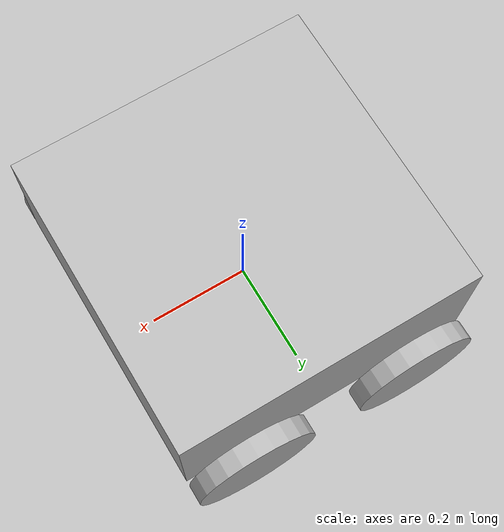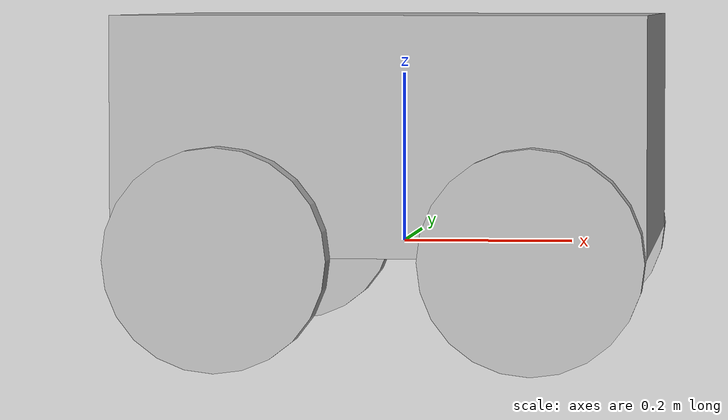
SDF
<!-- This is the same turtlebot model in nav2 with the following changes -->
<!-- 1. A GPS sensor is added -->
<!-- 2. A link for the GPS sensor is added -->
<!-- 3. The diff drive plugin does not publish the tf between odom->base_footprint, which is done by RL -->

<?xml version="1.0"?>
<sdf version="1.6">
    <model name="my_bot">
      <pose>0.0 0.0 0.0 0.0 0.0 0.0</pose>
      <!-- BASE LINK -->

      <link name="base_footprint">

      </link>

      <!-- CHASSIS LINK -->

      <joint name="base_joint" type="fixed">
          <parent>base_footprint</parent>
          <child>base_link</child>
          <pose>0 0 0 0 0 0</pose>
      </joint>
      <link name="base_link">
        <visual name="vis">
            <pose>0.0 0.0 0.135 0 0 0</pose>
            <geometry>
              <box>
                  <size>0.6 0.6 0.27</size>
              </box>
            </geometry>
        </visual>
        <collision name="col">
            <pose>0.0 0.0 0.135 0 0 0</pose>
            <geometry>
                <box>
                  <size>0.6 0.6 0.27</size>
                </box>
            </geometry>
        </collision>
        <inertial>
        <pose>0.0 0.0 0.135 0 0 0</pose>
        <mass>0.5</mass>
        <inertia>
          <ixx>0.3</ixx>
          <ixy>0</ixy>
          <ixz>0</ixz>
          <iyy>0.3</iyy>
          <iyz>0</iyz>
          <izz>0.15</izz>
        </inertia>
	    </inertial>
    </link>

      <joint name="back_left_wheel_joint" type="revolute">
        <parent>base_link</parent>
		  	<child>back_left_wheel</child>
        <pose>-0.175 0.33 0.0 -1.571 0 0</pose>
        <axis>
				<xyz>0 0 1</xyz>
			  </axis>
      </joint>

    <link name="back_left_wheel">
        <visual name="vis">
            <pose>-0.175 0.33 0.0 -1.571 0 0</pose>

            <geometry>
                <cylinder>
                  <radius>0.125</radius>
                  <length>0.04</length>
                </cylinder>
            </geometry>
        </visual>
        <collision name="col">
          <pose>-0.175 0.33 0.0 -1.571 0 0</pose>
            <geometry>
                <sphere>
                  <radius>0.125</radius>
                </sphere>
            </geometry>
        </collision>
        <inertial>
	      	<pose>-0.175 0.33 0.0 -1.571 0 0</pose>
        <mass>0.1</mass>
        <inertia>
          <ixx>0.00818088481028512</ixx>
          <ixy>8.31221665572211E-19</ixy>
          <ixz>1.55058808778393E-19</ixz>
          <iyy>0.00818088481028512</iyy>
          <iyz>2.65575231975444E-17</iyz>
          <izz>0.0158038579869233</izz>
        </inertia>
	    </inertial>
    </link>
    <joint name="front_left_wheel_joint" type="revolute">
        <pose>0.175 0.33 0 -1.571 0.0 0.0</pose>
	    	<parent>base_link</parent>
		  	<child>front_left_wheel</child>
        <axis>
				  <xyz>0 0 1</xyz>
			  </axis>
    </joint>

    <link name="front_left_wheel">
        <visual name="vis">
            <pose>0.175 0.33 0 -1.571 0.0 0.0</pose>
            <geometry>
                <cylinder>
                  <radius>0.125</radius>
                  <length>0.04</length>
                </cylinder>
            </geometry>
        </visual>
        <collision name="col">
            <pose>0.175 0.33 0 -1.571 0.0 0.0</pose>
            <geometry>
                <sphere>
                  <radius>0.125</radius>
                </sphere>
            </geometry>
        </collision>
        <inertial>
          <pose>0.175 0.33 0 -1.571 0.0 0.0</pose>
          <mass>0.1</mass>
          <inertia>
            <ixx>0.00818088481028512</ixx>
            <ixy>1.17455235352596E-18</ixy>
            <ixz>5.62382982653917E-20</ixz>
            <iyy>0.00818088481028512</iyy>
            <iyz>2.65575231975444E-17</iyz>
            <izz>0.0158038579869233</izz>
          </inertia>
	    </inertial>
    </link>

    <!-- RIGHT back WHEEL LINK -->

    <joint name="back_right_wheel_joint" type="revolute">
        <pose>-0.175 -0.33 0 1.571 0.0 0.0</pose>
        <parent>base_link</parent>
        <child>back_right_wheel</child>
        <axis>
          <xyz>0 0 -1</xyz>
        </axis>
    </joint>

    <link name="back_right_wheel">
        <visual name="vis">
            <pose>-0.175 -0.33 0 1.571 0.0 0.0</pose>
            <geometry>
                <cylinder>
                  <radius>0.125</radius>
                  <length>0.04</length>
                </cylinder>
            </geometry>
        </visual>
        <collision name="col">
            <pose>-0.175 -0.33 0 1.571 0.0 0.0</pose>
            <geometry>
                <sphere>
                  <radius>0.125</radius>
                </sphere>
            </geometry>
        </collision>
        <inertial>
			<pose>-0.175 -0.33 0 1.571 0.0 0.0</pose>
			<mass>0.1</mass>
			<inertia>
				<ixx>0.00818088481028511</ixx>
				<ixy>-8.31221665572215E-19</ixy>
				<ixz>-1.63529138250933E-19</ixz>
				<iyy>0.00818088481028511</iyy>
				<iyz>5.33492516736472E-17</iyz>
				<izz>0.0158038579869233</izz>
          	</inertia>
	    </inertial>
    </link>

    <!-- RIGHT front WHEEL LINK -->

    <joint name="front_right_wheel_joint" type="revolute">
        <pose>0.175 -0.33 0.0 1.571 0.0 0.0</pose>
	   	 	<parent>base_link</parent>
        <child>front_right_wheel</child>
        <axis>
          <xyz>0 0 -1</xyz>
        </axis>
    </joint>

    <link name="front_right_wheel">
        <visual name="vis">
            <pose>0.175 -0.33 0.0 1.571 0.0 0.0</pose>
            <geometry>
               <cylinder>
                  <radius>0.125</radius>
                  <length>0.04</length>
                </cylinder>
            </geometry>
        </visual>
        <collision name="col">
            <pose>0.175 -0.33 0.0 1.571 0.0 0.0</pose>
            <geometry>
                <sphere>
                  <radius>0.125</radius>
                </sphere>
            </geometry>
        </collision>
        <inertial>
          <pose>0.175 -0.33 0.0 1.571 0.0 0.0</pose>

          <mass>0.1</mass>
          <inertia>
            <ixx>0.00818088481028511</ixx>
            <ixy>1.55583818346496E-18</ixy>
            <ixz>-1.57805560009028E-20</ixz>
            <iyy>0.00818088481028511</iyy>
            <iyz>2.76541224531879E-17</iyz>
            <izz>0.0158038579869233</izz>
          </inertia>
          </inertial>
    </link>

    <plugin name="turtlebot3_diff_drive" filename="libgazebo_ros_diff_drive.so">

        <ros>
          <!--since gazebo_plugins publish tf topic in global namespace /tf only and it
            cannot be remapped like (namespace/tf) through launch arguments -->
          <remapping>/tf:=tf</remapping>
        </ros>

        <update_rate>30</update_rate>

        <!-- wheels -->
        <left_joint>front_left_wheel_joint</left_joint>
        <right_joint>front_right_wheel_joint</right_joint>
        <left_joint>back_left_wheel_joint</left_joint>
        <right_joint>back_right_wheel_joint</right_joint>

        <!-- kinematics -->
        <wheel_separation>0.730</wheel_separation>
        <wheel_separation>0.730</wheel_separation>

        <wheel_diameter>0.25</wheel_diameter>
        <wheel_diameter>0.25</wheel_diameter>

        <num_wheel_pairs>2</num_wheel_pairs>
        <!-- limits -->
        <max_wheel_torque>20</max_wheel_torque>
        <max_wheel_acceleration>1.0</max_wheel_acceleration>

        <command_topic>cmd_vel</command_topic>

        <!-- output -->
        <!-- The odom -> base link transform is published by the ekf in robot localization -->
        <publish_odom>true</publish_odom>
        <publish_odom_tf>false</publish_odom_tf>
        <publish_wheel_tf>false</publish_wheel_tf>

        <odometry_topic>odom</odometry_topic>
        <odometry_frame>odom</odometry_frame>
        <robot_base_frame>base_footprint</robot_base_frame>

      </plugin>

    <plugin name="turtlebot3_joint_state" filename="libgazebo_ros_joint_state_publisher.so">
        <ros>
            <remapping>~/out:=joint_states</remapping>
        </ros>
        <update_rate>30</update_rate>
		    <joint_name>front_left_wheel_joint</joint_name>
        <joint_name>front_right_wheel_joint</joint_name>
        <joint_name>back_left_wheel_joint</joint_name>
        <joint_name>back_right_wheel_joint</joint_name>

      </plugin>

    </model>
</sdf>
